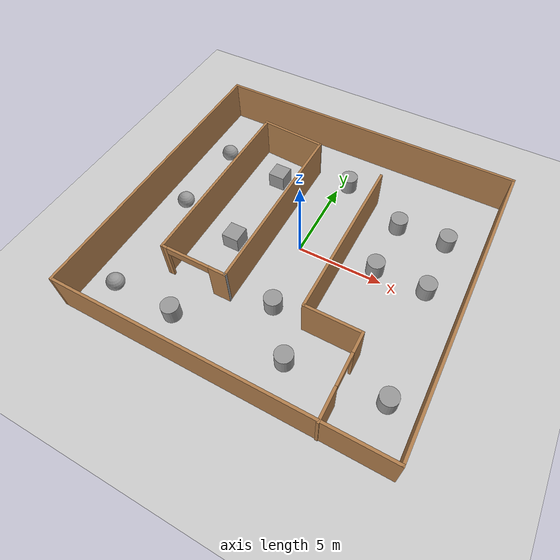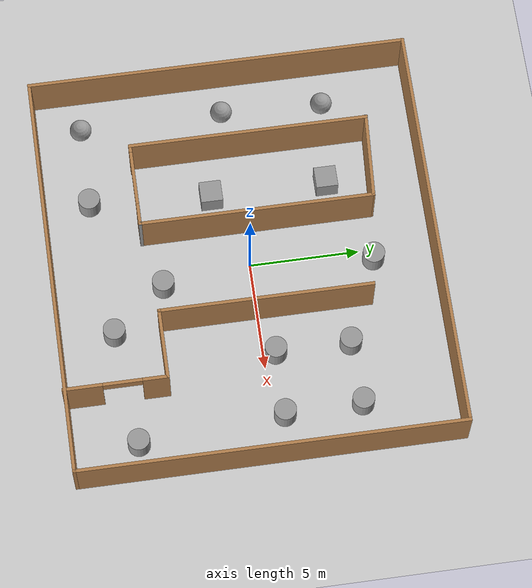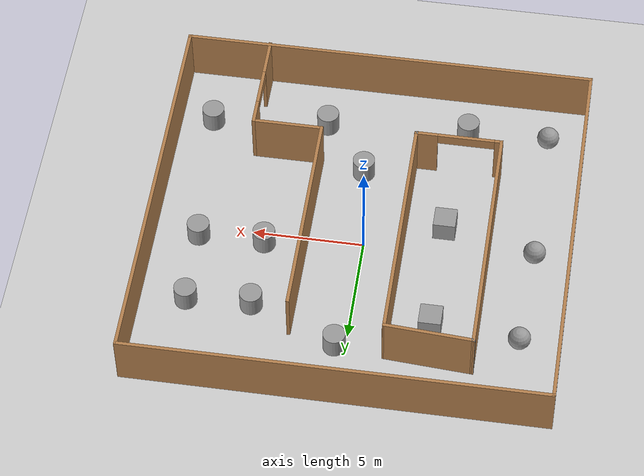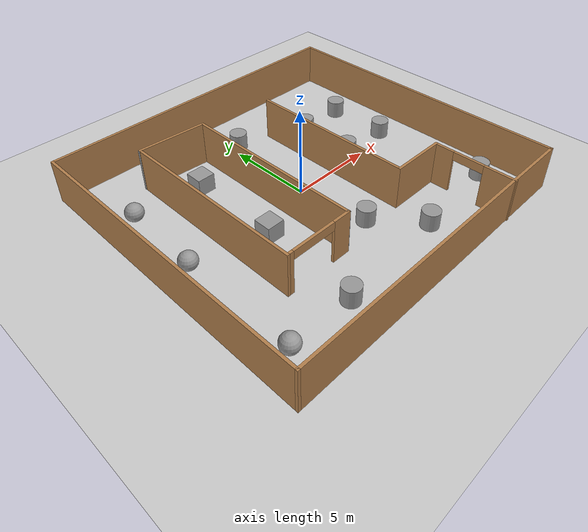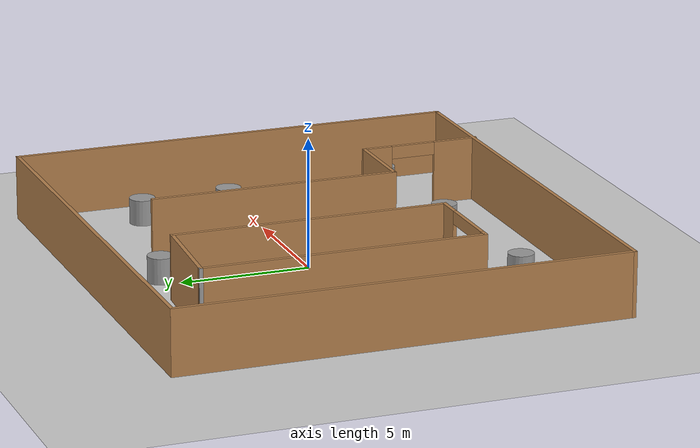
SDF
<sdf version="1.7">
 <world name="default">
  <light name="sun" type="directional">
   <pose>0 0 10 0 -0 0</pose>
   <diffuse>0.8 0.8 0.8 1</diffuse>
   <specular>0.2 0.2 0.2 1</specular>
   <attenuation>
    <range>1000</range>
    <constant>0.9</constant>
    <linear>0.01</linear>
    <quadratic>0.001</quadratic>
   </attenuation>
   <direction>-0.5 0.1 -0.9</direction>
   <spot><inner_angle>0</inner_angle><outer_angle>0</outer_angle><falloff>0</falloff></spot>
  </light>
  <model name="ground_plane">
   <static>1</static>
   <link name="link">
    <collision name="collision">
     <geometry><plane><normal>0 0 1</normal><size>100 100</size></plane></geometry>
     <surface><friction><ode><mu>100</mu><mu2>50</mu2></ode></friction></surface>
    </collision>
    <visual name="visual">
     <cast_shadows>0</cast_shadows>
     <geometry><plane><normal>0 0 1</normal><size>100 100</size></plane></geometry>
     <material>
      <script><uri>file://media/materials/scripts/gazebo.material</uri><name>Gazebo/Grey</name></script>
     </material>
    </visual>
   </link>
  </model>
  <gravity>0 0 -9.8</gravity>
  <magnetic_field>6e-06 2.3e-05 -4.2e-05</magnetic_field>
  <atmosphere type="adiabatic"/>
  <physics type="ode">
   <max_step_size>0.001</max_step_size>
   <real_time_factor>1</real_time_factor>
   <real_time_update_rate>1000</real_time_update_rate>
  </physics>
  <scene><ambient>0.4 0.4 0.4 1</ambient><background>0.7 0.7 0.7 1</background><shadows>1</shadows></scene>
  <spherical_coordinates>
   <surface_model>EARTH_WGS84</surface_model>
   <latitude_deg>0</latitude_deg>
   <longitude_deg>0</longitude_deg>
   <elevation>0</elevation>
   <heading_deg>0</heading_deg>
  </spherical_coordinates>
  <model name="simple">
   <pose>0.098031 -0.31582 0 0 -0 0</pose>
   <link name="Wall_1">
    <collision name="Wall_1_Collision">
     <geometry><box><size>18.75 0.15 2.5</size></box></geometry>
     <pose>0 0 1.25 0 -0 0</pose>
    </collision>
    <visual name="Wall_1_Visual">
     <pose>0 0 1.25 0 -0 0</pose>
     <geometry><box><size>18.75 0.15 2.5</size></box></geometry>
     <material>
      <script><uri>file://media/materials/scripts/gazebo.material</uri><name>Gazebo/Wood</name></script>
      <ambient>1 1 1 1</ambient>
     </material>
     <meta><layer>0</layer></meta>
    </visual>
    <pose>-0 8.69973 0 0 -0 0</pose>
   </link>
   <link name="Wall_13">
    <collision name="Wall_13_Collision">
     <geometry><box><size>10.75 0.15 2.5</size></box></geometry>
     <pose>0 0 1.25 0 -0 0</pose>
    </collision>
    <visual name="Wall_13_Visual">
     <pose>0 0 1.25 0 -0 0</pose>
     <geometry><box><size>10.75 0.15 2.5</size></box></geometry>
     <material>
      <script><uri>file://media/materials/scripts/gazebo.material</uri><name>Gazebo/Wood</name></script>
      <ambient>1 1 1 1</ambient>
     </material>
     <meta><layer>0</layer></meta>
    </visual>
    <pose>-1.80985 0.873193 0 0 -0 1.5708</pose>
   </link>
   <link name="Wall_14">
    <collision name="Wall_14_Collision">
     <geometry><box><size>4.00811 0.15 2.5</size></box></geometry>
     <pose>0 0 1.25 0 -0 0</pose>
    </collision>
    <visual name="Wall_14_Visual">
     <pose>0 0 1.25 0 -0 0</pose>
     <geometry><box><size>4.00811 0.15 2.5</size></box></geometry>
     <material>
      <script><uri>file://media/materials/scripts/gazebo.material</uri><name>Gazebo/Wood</name></script>
      <ambient>1 1 1 1</ambient>
     </material>
     <meta><layer>0</layer></meta>
    </visual>
    <pose>-3.73486 6.29819 0 0 -0 3.07675</pose>
   </link>
   <link name="Wall_16">
    <pose>-3.73486 -4.42681 0 0 -0 3.14159</pose>
    <visual name="Wall_16_Visual_0">
     <pose>-1.47268 0 1.25 0 -0 0</pose>
     <geometry><box><size>1.05465 0.15 2.5</size></box></geometry>
     <material>
      <script><uri>file://media/materials/scripts/gazebo.material</uri><name>Gazebo/Wood</name></script>
      <ambient>1 1 1 1</ambient>
     </material>
     <meta><layer>0</layer></meta>
    </visual>
    <collision name="Wall_16_Collision_0">
     <geometry><box><size>1.05465 0.15 2.5</size></box></geometry>
     <pose>-1.47268 0 1.25 0 -0 0</pose>
    </collision>
    <visual name="Wall_16_Visual_1">
     <pose>1.80795 0 1.25 0 -0 0</pose>
     <geometry><box><size>0.384098 0.15 2.5</size></box></geometry>
     <material>
      <script><uri>file://media/materials/scripts/gazebo.material</uri><name>Gazebo/Wood</name></script>
      <ambient>1 1 1 1</ambient>
     </material>
     <meta><layer>0</layer></meta>
    </visual>
    <collision name="Wall_16_Collision_1">
     <geometry><box><size>0.384098 0.15 2.5</size></box></geometry>
     <pose>1.80795 0 1.25 0 -0 0</pose>
    </collision>
    <visual name="Wall_16_Visual_2">
     <pose>0.335275 0 2.25 0 -0 0</pose>
     <geometry><box><size>2.56125 0.15 0.5</size></box></geometry>
     <material>
      <script><uri>file://media/materials/scripts/gazebo.material</uri><name>Gazebo/Wood</name></script>
      <ambient>1 1 1 1</ambient>
     </material>
     <meta><layer>0</layer></meta>
    </visual>
    <collision name="Wall_16_Collision_2">
     <geometry><box><size>2.56125 0.15 0.5</size></box></geometry>
     <pose>0.335275 0 2.25 0 -0 0</pose>
    </collision>
   </link>
   <link name="Wall_18">
    <collision name="Wall_18_Collision">
     <geometry><box><size>9.75 0.15 2.5</size></box></geometry>
     <pose>0 0 1.25 0 -0 0</pose>
    </collision>
    <visual name="Wall_18_Visual">
     <pose>0 0 1.25 0 -0 0</pose>
     <geometry><box><size>9.75 0.15 2.5</size></box></geometry>
     <material>
      <script><uri>file://media/materials/scripts/gazebo.material</uri><name>Gazebo/Wood</name></script>
      <ambient>1 1 1 1</ambient>
     </material>
     <meta><layer>0</layer></meta>
    </visual>
    <pose>2.45182 0.700275 0 0 -0 -1.5708</pose>
   </link>
   <link name="Wall_19">
    <collision name="Wall_19_Collision">
     <geometry><box><size>3.25 0.15 2.5</size></box></geometry>
     <pose>0 0 1.25 0 -0 0</pose>
    </collision>
    <visual name="Wall_19_Visual">
     <pose>0 0 1.25 0 -0 0</pose>
     <geometry><box><size>3.25 0.15 2.5</size></box></geometry>
     <material>
      <script><uri>file://media/materials/scripts/gazebo.material</uri><name>Gazebo/Wood</name></script>
      <ambient>1 1 1 1</ambient>
     </material>
     <meta><layer>0</layer></meta>
    </visual>
    <pose>4.00182 -4.09973 0 0 -0 0</pose>
   </link>
   <link name="Wall_2">
    <collision name="Wall_2_Collision">
     <geometry><box><size>17.5 0.15 2.5</size></box></geometry>
     <pose>0 0 1.25 0 -0 0</pose>
    </collision>
    <visual name="Wall_2_Visual">
     <pose>0 0 1.25 0 -0 0</pose>
     <geometry><box><size>17.5 0.15 2.5</size></box></geometry>
     <material>
      <script><uri>file://media/materials/scripts/gazebo.material</uri><name>Gazebo/Wood</name></script>
      <ambient>1 1 1 1</ambient>
     </material>
     <meta><layer>0</layer></meta>
    </visual>
    <pose>9.3 0.024725 0 0 -0 -1.5708</pose>
   </link>
   <link name="Wall_20">
    <pose>5.55182 -6.39973 0 0 -0 -1.5708</pose>
    <visual name="Wall_20_Visual_0">
     <pose>-1.77885 0 1.25 0 -0 0</pose>
     <geometry><box><size>1.19231 0.15 2.5</size></box></geometry>
     <material>
      <script><uri>file://media/materials/scripts/gazebo.material</uri><name>Gazebo/Wood</name></script>
      <ambient>1 1 1 1</ambient>
     </material>
     <meta><layer>0</layer></meta>
    </visual>
    <collision name="Wall_20_Collision_0">
     <geometry><box><size>1.19231 0.15 2.5</size></box></geometry>
     <pose>-1.77885 0 1.25 0 -0 0</pose>
    </collision>
    <visual name="Wall_20_Visual_1">
     <pose>1.47685 0 1.25 0 -0 0</pose>
     <geometry><box><size>1.7963 0.15 2.5</size></box></geometry>
     <material>
      <script><uri>file://media/materials/scripts/gazebo.material</uri><name>Gazebo/Wood</name></script>
      <ambient>1 1 1 1</ambient>
     </material>
     <meta><layer>0</layer></meta>
    </visual>
    <collision name="Wall_20_Collision_1">
     <geometry><box><size>1.7963 0.15 2.5</size></box></geometry>
     <pose>1.47685 0 1.25 0 -0 0</pose>
    </collision>
    <visual name="Wall_20_Visual_2">
     <pose>-0.301996 0 2.25 0 -0 0</pose>
     <geometry><box><size>1.76139 0.15 0.5</size></box></geometry>
     <material>
      <script><uri>file://media/materials/scripts/gazebo.material</uri><name>Gazebo/Wood</name></script>
      <ambient>1 1 1 1</ambient>
     </material>
     <meta><layer>0</layer></meta>
    </visual>
    <collision name="Wall_20_Collision_2">
     <geometry><box><size>1.76139 0.15 0.5</size></box></geometry>
     <pose>-0.301996 0 2.25 0 -0 0</pose>
    </collision>
   </link>
   <link name="Wall_3">
    <collision name="Wall_3_Collision">
     <geometry><box><size>18.75 0.15 2.5</size></box></geometry>
     <pose>0 0 1.25 0 -0 0</pose>
    </collision>
    <visual name="Wall_3_Visual">
     <pose>0 0 1.25 0 -0 0</pose>
     <geometry><box><size>18.75 0.15 2.5</size></box></geometry>
     <material>
      <script><uri>file://media/materials/scripts/gazebo.material</uri><name>Gazebo/Wood</name></script>
      <ambient>1 1 1 1</ambient>
     </material>
     <meta><layer>0</layer></meta>
    </visual>
    <pose>-0 -8.65028 0 0 -0 3.14159</pose>
   </link>
   <link name="Wall_4">
    <collision name="Wall_4_Collision">
     <geometry><box><size>17.5 0.15 2.5</size></box></geometry>
     <pose>0 0 1.25 0 -0 0</pose>
    </collision>
    <visual name="Wall_4_Visual">
     <pose>0 0 1.25 0 -0 0</pose>
     <geometry><box><size>17.5 0.15 2.5</size></box></geometry>
     <material>
      <script><uri>file://media/materials/scripts/gazebo.material</uri><name>Gazebo/Wood</name></script>
      <ambient>1 1 1 1</ambient>
     </material>
     <meta><layer>0</layer></meta>
    </visual>
    <pose>-9.3 0.024725 0 0 -0 1.5708</pose>
   </link>
   <link name="Wall_6">
    <collision name="Wall_6_Collision">
     <geometry><box><size>0.16 0.15 2.5</size></box></geometry>
     <pose>0 0 1.25 0 -0 0</pose>
    </collision>
    <visual name="Wall_6_Visual">
     <pose>0 0 1.25 0 -0 0</pose>
     <geometry><box><size>0.16 0.15 2.5</size></box></geometry>
     <material>
      <script><uri>file://media/materials/scripts/gazebo.material</uri><name>Gazebo/Grey</name></script>
      <ambient>1 1 1 1</ambient>
     </material>
     <meta><layer>0</layer></meta>
    </visual>
    <pose>-5.66486 6.42319 0 0 -0 0</pose>
   </link>
   <link name="Wall_7">
    <collision name="Wall_7_Collision">
     <geometry><box><size>11 0.15 2.5</size></box></geometry>
     <pose>0 0 1.25 0 -0 0</pose>
    </collision>
    <visual name="Wall_7_Visual">
     <pose>0 0 1.25 0 -0 0</pose>
     <geometry><box><size>11 0.15 2.5</size></box></geometry>
     <material>
      <script><uri>file://media/materials/scripts/gazebo.material</uri><name>Gazebo/Wood</name></script>
      <ambient>1 1 1 1</ambient>
     </material>
     <meta><layer>0</layer></meta>
    </visual>
    <pose>-5.65986 0.998193 0 0 -0 -1.5708</pose>
   </link>
   <link name="Wall_9">
    <collision name="Wall_9_Collision">
     <geometry><box><size>0.16 0.15 2.5</size></box></geometry>
     <pose>0 0 1.25 0 -0 0</pose>
    </collision>
    <visual name="Wall_9_Visual">
     <pose>0 0 1.25 0 -0 0</pose>
     <geometry><box><size>0.16 0.15 2.5</size></box></geometry>
     <material>
      <script><uri>file://media/materials/scripts/gazebo.material</uri><name>Gazebo/Grey</name></script>
      <ambient>1 1 1 1</ambient>
     </material>
     <meta><layer>0</layer></meta>
    </visual>
    <pose>-1.80486 -4.42681 0 0 -0 0</pose>
   </link>
   <static>1</static>
  </model>
  <model name="unit_cylinder">
   <pose>7.29692 4.08936 0.499992 -3e-06 3e-06 0</pose>
   <link name="link">
    <inertial>
     <mass>1</mass>
     <inertia><ixx>0.145833</ixx><ixy>0</ixy><ixz>0</ixz><iyy>0.145833</iyy><iyz>0</iyz><izz>0.125</izz></inertia>
    </inertial>
    <collision name="collision">
     <geometry><cylinder><radius>0.5</radius><length>1</length></cylinder></geometry>
    </collision>
    <visual name="visual">
     <geometry><cylinder><radius>0.5</radius><length>1</length></cylinder></geometry>
     <material>
      <script><name>Gazebo/Grey</name><uri>file://media/materials/scripts/gazebo.material</uri></script>
     </material>
    </visual>
   </link>
  </model>
  <model name="unit_cylinder_0">
   <pose>4.4108 3.9697 0.499998 3e-06 -3e-06 0</pose>
   <link name="link">
    <inertial>
     <mass>1</mass>
     <inertia><ixx>0.145833</ixx><ixy>0</ixy><ixz>0</ixz><iyy>0.145833</iyy><iyz>0</iyz><izz>0.125</izz></inertia>
    </inertial>
    <collision name="collision">
     <geometry><cylinder><radius>0.5</radius><length>1</length></cylinder></geometry>
    </collision>
    <visual name="visual">
     <geometry><cylinder><radius>0.5</radius><length>1</length></cylinder></geometry>
     <material>
      <script><name>Gazebo/Grey</name><uri>file://media/materials/scripts/gazebo.material</uri></script>
     </material>
    </visual>
   </link>
  </model>
  <model name="unit_cylinder_1">
   <pose>7.35873 0.569405 0.499992 -3e-06 3e-06 0</pose>
   <link name="link">
    <inertial>
     <mass>1</mass>
     <inertia><ixx>0.145833</ixx><ixy>0</ixy><ixz>0</ixz><iyy>0.145833</iyy><iyz>0</iyz><izz>0.125</izz></inertia>
    </inertial>
    <collision name="collision">
     <geometry><cylinder><radius>0.5</radius><length>1</length></cylinder></geometry>
    </collision>
    <visual name="visual">
     <geometry><cylinder><radius>0.5</radius><length>1</length></cylinder></geometry>
     <material>
      <script><name>Gazebo/Grey</name><uri>file://media/materials/scripts/gazebo.material</uri></script>
     </material>
    </visual>
   </link>
  </model>
  <model name="unit_cylinder_2">
   <pose>4.39731 0.569478 0.499998 3e-06 -3e-06 0</pose>
   <link name="link">
    <inertial>
     <mass>1</mass>
     <inertia><ixx>0.145833</ixx><ixy>0</ixy><ixz>0</ixz><iyy>0.145833</iyy><iyz>0</iyz><izz>0.125</izz></inertia>
    </inertial>
    <collision name="collision">
     <geometry><cylinder><radius>0.5</radius><length>1</length></cylinder></geometry>
    </collision>
    <visual name="visual">
     <geometry><cylinder><radius>0.5</radius><length>1</length></cylinder></geometry>
     <material>
      <script><name>Gazebo/Grey</name><uri>file://media/materials/scripts/gazebo.material</uri></script>
     </material>
    </visual>
   </link>
  </model>
  <model name="unit_cylinder_3">
   <pose>0.56687 -4.02957 0.499992 -3e-06 3e-06 0</pose>
   <link name="link">
    <inertial>
     <mass>1</mass>
     <inertia><ixx>0.145833</ixx><ixy>0</ixy><ixz>0</ixz><iyy>0.145833</iyy><iyz>0</iyz><izz>0.125</izz></inertia>
    </inertial>
    <collision name="collision">
     <geometry><cylinder><radius>0.5</radius><length>1</length></cylinder></geometry>
    </collision>
    <visual name="visual">
     <geometry><cylinder><radius>0.5</radius><length>1</length></cylinder></geometry>
     <material>
      <script><name>Gazebo/Grey</name><uri>file://media/materials/scripts/gazebo.material</uri></script>
     </material>
    </visual>
   </link>
  </model>
  <model name="unit_cylinder_4">
   <pose>2.58114 -6.49656 0.499998 3e-06 -3e-06 0</pose>
   <link name="link">
    <inertial>
     <mass>1</mass>
     <inertia><ixx>0.145833</ixx><ixy>0</ixy><ixz>0</ixz><iyy>0.145833</iyy><iyz>0</iyz><izz>0.125</izz></inertia>
    </inertial>
    <collision name="collision">
     <geometry><cylinder><radius>0.5</radius><length>1</length></cylinder></geometry>
    </collision>
    <visual name="visual">
     <geometry><cylinder><radius>0.5</radius><length>1</length></cylinder></geometry>
     <material>
      <script><name>Gazebo/Grey</name><uri>file://media/materials/scripts/gazebo.material</uri></script>
     </material>
    </visual>
   </link>
  </model>
  <model name="unit_cylinder_5">
   <pose>0.487764 5.60453 0.499998 3e-06 4e-06 -0</pose>
   <link name="link">
    <inertial>
     <mass>1</mass>
     <inertia><ixx>0.145833</ixx><ixy>0</ixy><ixz>0</ixz><iyy>0.145833</iyy><iyz>0</iyz><izz>0.125</izz></inertia>
    </inertial>
    <collision name="collision">
     <geometry><cylinder><radius>0.5</radius><length>1</length></cylinder></geometry>
    </collision>
    <visual name="visual">
     <geometry><cylinder><radius>0.5</radius><length>1</length></cylinder></geometry>
     <material>
      <script><name>Gazebo/Grey</name><uri>file://media/materials/scripts/gazebo.material</uri></script>
     </material>
    </visual>
   </link>
  </model>
  <model name="unit_box">
   <pose>-3.50274 3.99417 0.5 0 -0 0</pose>
   <link name="link">
    <inertial>
     <mass>1</mass>
     <inertia>
      <ixx>0.166667</ixx>
      <ixy>0</ixy>
      <ixz>0</ixz>
      <iyy>0.166667</iyy>
      <iyz>0</iyz>
      <izz>0.166667</izz>
     </inertia>
    </inertial>
    <collision name="collision"><geometry><box><size>1 1 1</size></box></geometry></collision>
    <visual name="visual">
     <geometry><box><size>1 1 1</size></box></geometry>
     <material>
      <script><name>Gazebo/Grey</name><uri>file://media/materials/scripts/gazebo.material</uri></script>
     </material>
    </visual>
   </link>
  </model>
  <model name="unit_box_0">
   <pose>-3.48779 -1.32479 0.5 -0 -0 -0</pose>
   <link name="link">
    <inertial>
     <mass>1</mass>
     <inertia>
      <ixx>0.166667</ixx>
      <ixy>0</ixy>
      <ixz>0</ixz>
      <iyy>0.166667</iyy>
      <iyz>0</iyz>
      <izz>0.166667</izz>
     </inertia>
    </inertial>
    <collision name="collision"><geometry><box><size>1 1 1</size></box></geometry></collision>
    <visual name="visual">
     <geometry><box><size>1 1 1</size></box></geometry>
     <material>
      <script><name>Gazebo/Grey</name><uri>file://media/materials/scripts/gazebo.material</uri></script>
     </material>
    </visual>
   </link>
  </model>
  <model name="unit_sphere">
   <pose>-7.4269 4.36361 0.5 0 -0 0</pose>
   <link name="link">
    <inertial>
     <mass>1</mass>
     <inertia><ixx>0.1</ixx><ixy>0</ixy><ixz>0</ixz><iyy>0.1</iyy><iyz>0</iyz><izz>0.1</izz></inertia>
    </inertial>
    <collision name="collision"><geometry><sphere><radius>0.5</radius></sphere></geometry></collision>
    <visual name="visual">
     <geometry><sphere><radius>0.5</radius></sphere></geometry>
     <material>
      <script><name>Gazebo/Grey</name><uri>file://media/materials/scripts/gazebo.material</uri></script>
     </material>
    </visual>
   </link>
  </model>
  <model name="unit_sphere_0">
   <pose>-7.60947 -0.309746 0.5 0 -0 0</pose>
   <link name="link">
    <inertial>
     <mass>1</mass>
     <inertia><ixx>0.1</ixx><ixy>0</ixy><ixz>0</ixz><iyy>0.1</iyy><iyz>0</iyz><izz>0.1</izz></inertia>
    </inertial>
    <collision name="collision"><geometry><sphere><radius>0.5</radius></sphere></geometry></collision>
    <visual name="visual">
     <geometry><sphere><radius>0.5</radius></sphere></geometry>
     <material>
      <script><name>Gazebo/Grey</name><uri>file://media/materials/scripts/gazebo.material</uri></script>
     </material>
    </visual>
   </link>
  </model>
  <model name="unit_sphere_1">
   <pose>-7.56425 -6.88545 0.5 0 -0 0</pose>
   <link name="link">
    <inertial>
     <mass>1</mass>
     <inertia><ixx>0.1</ixx><ixy>0</ixy><ixz>0</ixz><iyy>0.1</iyy><iyz>0</iyz><izz>0.1</izz></inertia>
    </inertial>
    <collision name="collision"><geometry><sphere><radius>0.5</radius></sphere></geometry></collision>
    <visual name="visual">
     <geometry><sphere><radius>0.5</radius></sphere></geometry>
     <material>
      <script><name>Gazebo/Grey</name><uri>file://media/materials/scripts/gazebo.material</uri></script>
     </material>
    </visual>
   </link>
  </model>
  <model name="unit_cylinder_6">
   <pose>-3.87353 -6.8946 0.499997 3e-06 4e-06 -0</pose>
   <link name="link">
    <inertial>
     <mass>1</mass>
     <inertia><ixx>0.145833</ixx><ixy>0</ixy><ixz>0</ixz><iyy>0.145833</iyy><iyz>0</iyz><izz>0.125</izz></inertia>
    </inertial>
    <collision name="collision">
     <geometry><cylinder><radius>0.5</radius><length>1</length></cylinder></geometry>
    </collision>
    <visual name="visual">
     <geometry><cylinder><radius>0.5</radius><length>1</length></cylinder></geometry>
     <material>
      <script><name>Gazebo/Grey</name><uri>file://media/materials/scripts/gazebo.material</uri></script>
     </material>
    </visual>
   </link>
  </model>
  <model name="unit_cylinder_7">
   <pose>7.85649 -6.03091 0.499993 -3e-06 -4e-06 -0</pose>
   <link name="link">
    <inertial>
     <mass>1</mass>
     <inertia><ixx>0.145833</ixx><ixy>0</ixy><ixz>0</ixz><iyy>0.145833</iyy><iyz>0</iyz><izz>0.125</izz></inertia>
    </inertial>
    <collision name="collision">
     <geometry><cylinder><radius>0.5</radius><length>1</length></cylinder></geometry>
    </collision>
    <visual name="visual">
     <geometry><cylinder><radius>0.5</radius><length>1</length></cylinder></geometry>
     <material>
      <script><name>Gazebo/Grey</name><uri>file://media/materials/scripts/gazebo.material</uri></script>
     </material>
    </visual>
   </link>
  </model>
 </world>
</sdf>
